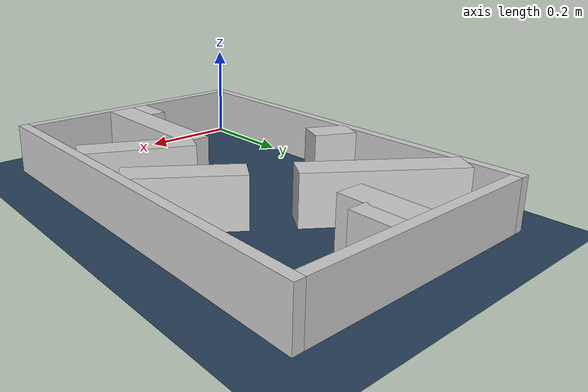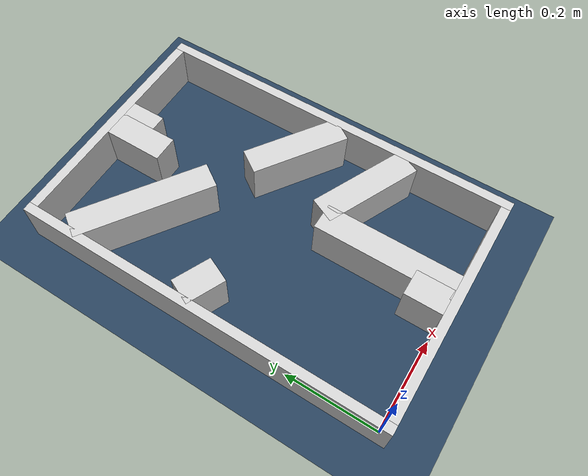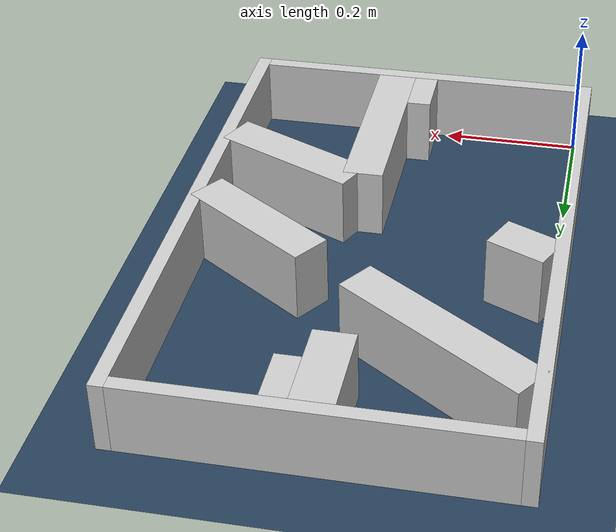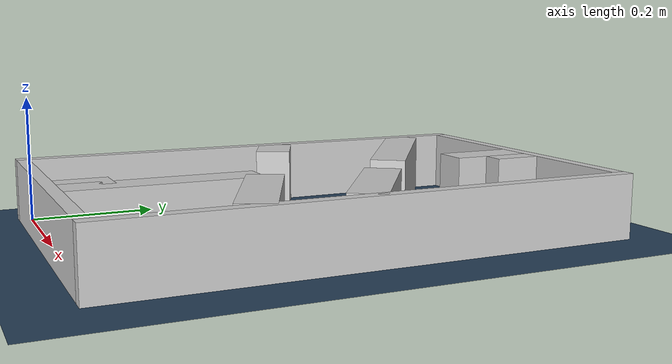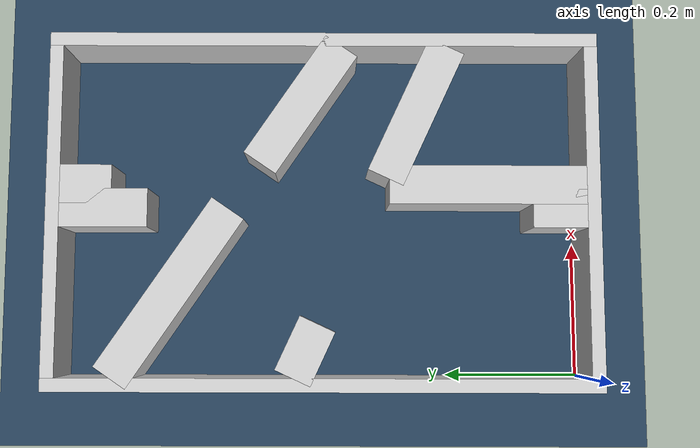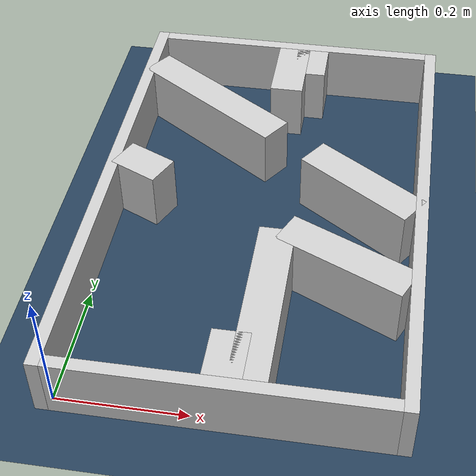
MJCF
<?xml version="1.0" ?>
<mujoco model="generated_real_template">
  <compiler angle="degree"/>
  <option timestep="0.002" integrator="implicitfast" iterations="100" cone="elliptic"/>
  <default>
    <geom density="1"/>
  </default>
  <asset>
    <texture builtin="gradient" height="3072" rgb1="0.3 0.5 0.7" rgb2="0 0 0" type="skybox" width="512"/>
    <texture builtin="checker" height="300" mark="edge" markrgb="0.8 0.8 0.8" name="groundplane" rgb1="0.2 0.3 0.4" rgb2="0.1 0.2 0.3" type="2d" width="300"/>
    <material name="groundplane" reflectance="0.2" texrepeat="5 5" texture="groundplane" texuniform="true"/>
  </asset>
  <worldbody>
    <light dir="0 0 -1" directional="true" pos="0 0 1.5"/>
    <geom name="floor" type="plane" condim="4" friction="0.5 0.005 0.001" material="groundplane" size="0 0 0.05"/>
    <body name="walls">
      <geom name="wall_boundary_left" type="box" condim="4" friction="1.0 0.005 0.0001" rgba="0.8 0.8 0.8 1" pos="-0.010000 0.387500 0.050000" euler="0 0 0.000000" size="0.010000 0.407500 0.050000"/>
      <geom name="wall_boundary_right" type="box" condim="4" friction="1.0 0.005 0.0001" rgba="0.8 0.8 0.8 1" pos="0.500000 0.387500 0.050000" euler="0 0 0.000000" size="0.010000 0.407500 0.050000"/>
      <geom name="wall_boundary_bottom" type="box" condim="4" friction="1.0 0.005 0.0001" rgba="0.8 0.8 0.8 1" pos="0.245000 -0.010000 0.050000" euler="0 0 0.000000" size="0.245000 0.010000 0.050000"/>
      <geom name="wall_boundary_top" type="box" condim="4" friction="1.0 0.005 0.0001" rgba="0.8 0.8 0.8 1" pos="0.245000 0.785000 0.050000" euler="0 0 0.000000" size="0.245000 0.010000 0.050000"/>
      <geom name="wall_inner_1_1" type="box" condim="4" friction="1.0 0.005 0.0001" rgba="0.8 0.8 0.8 1" pos="0.123048 0.611472 0.050000" euler="0 0 -34.319048" size="0.148984 0.028500 0.050000"/>
      <geom name="wall_inner_1_2" type="box" condim="4" friction="1.0 0.005 0.0001" rgba="0.8 0.8 0.8 1" pos="0.401721 0.421238 0.050000" euler="0 0 -34.319048" size="0.106886 0.028500 0.050000"/>
      <geom name="wall_inner_2_1" type="box" condim="4" friction="1.0 0.005 0.0001" rgba="0.8 0.8 0.8 1" pos="0.391160 0.249995 0.050000" euler="0 0 155.103740" size="0.108966 0.028500 0.050000"/>
      <geom name="wall_inner_2_2" type="box" condim="4" friction="1.0 0.005 0.0001" rgba="0.8 0.8 0.8 1" pos="0.038986 0.413441 0.050000" euler="0 0 155.103740" size="0.042980 0.028500 0.050000"/>
      <geom name="wall_inner_3_1" type="box" condim="4" friction="1.0 0.005 0.0001" rgba="0.8 0.8 0.8 1" pos="0.246956 0.039921 0.050000" euler="0 0 90.000000" size="0.039921 0.028500 0.050000"/>
      <geom name="wall_inner_3_2" type="box" condim="4" friction="1.0 0.005 0.0001" rgba="0.8 0.8 0.8 1" pos="0.246956 0.710214 0.050000" euler="0 0 90.000000" size="0.064786 0.028500 0.050000"/>
      <geom name="wall_inner_4_1" type="box" condim="4" friction="1.0 0.005 0.0001" rgba="0.8 0.8 0.8 1" pos="0.281913 0.145076 0.050000" euler="0 0 90.000000" size="0.145076 0.028500 0.050000"/>
      <geom name="wall_inner_4_2" type="box" condim="4" friction="1.0 0.005 0.0001" rgba="0.8 0.8 0.8 1" pos="0.281913 0.736887 0.050000" euler="0 0 90.000000" size="0.038113 0.028500 0.050000"/>
    </body>
  </worldbody>
</mujoco>
